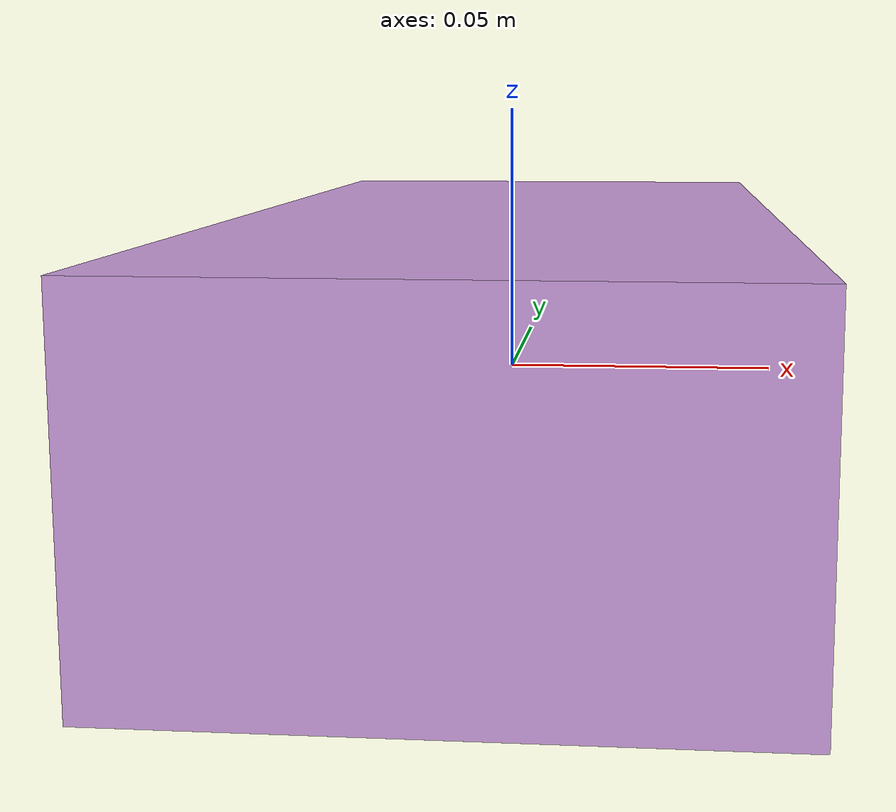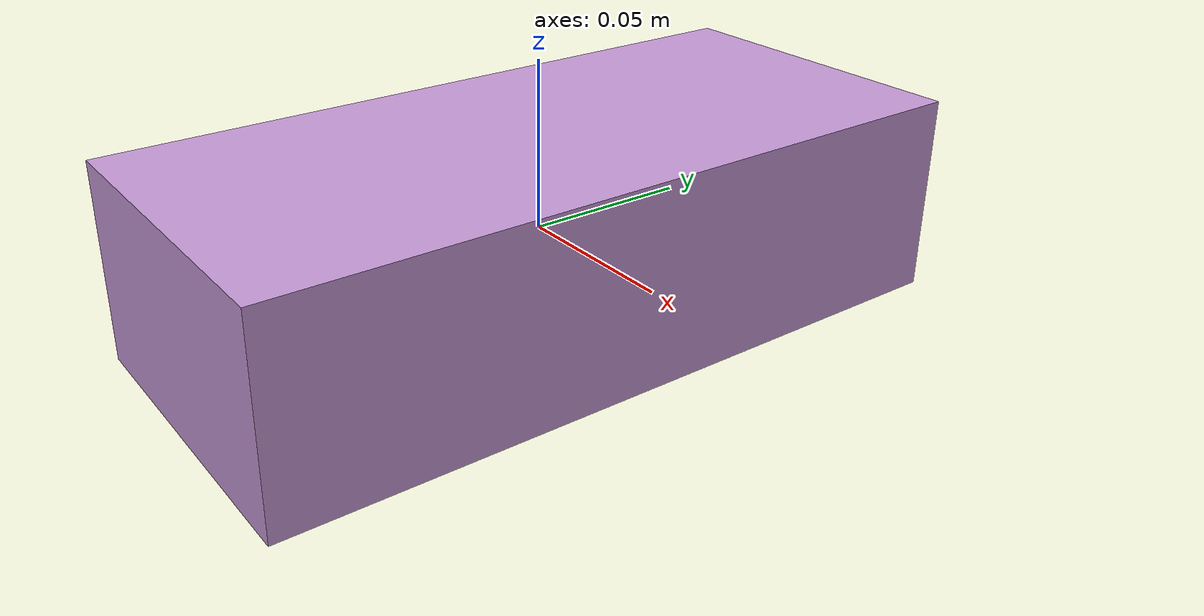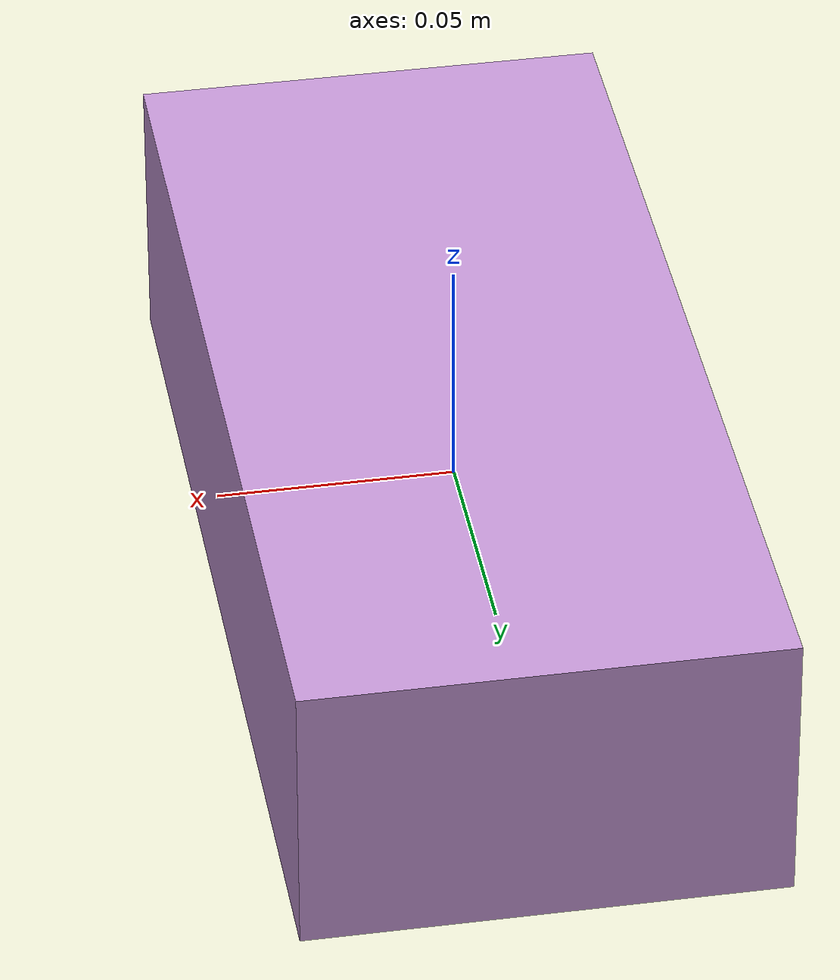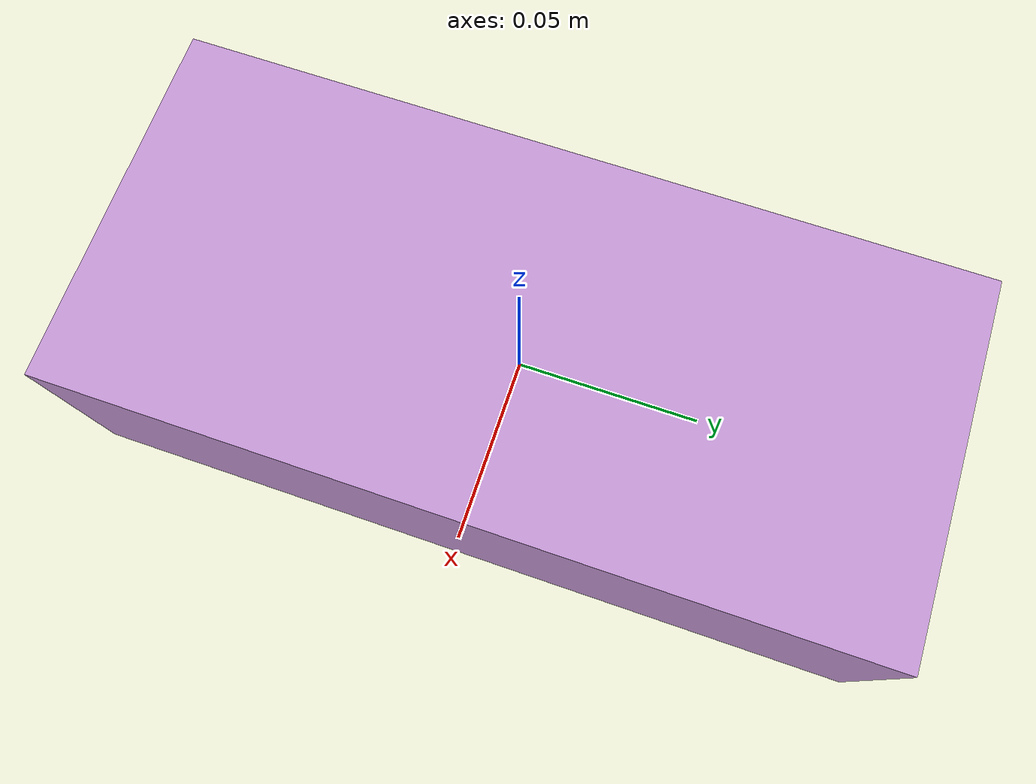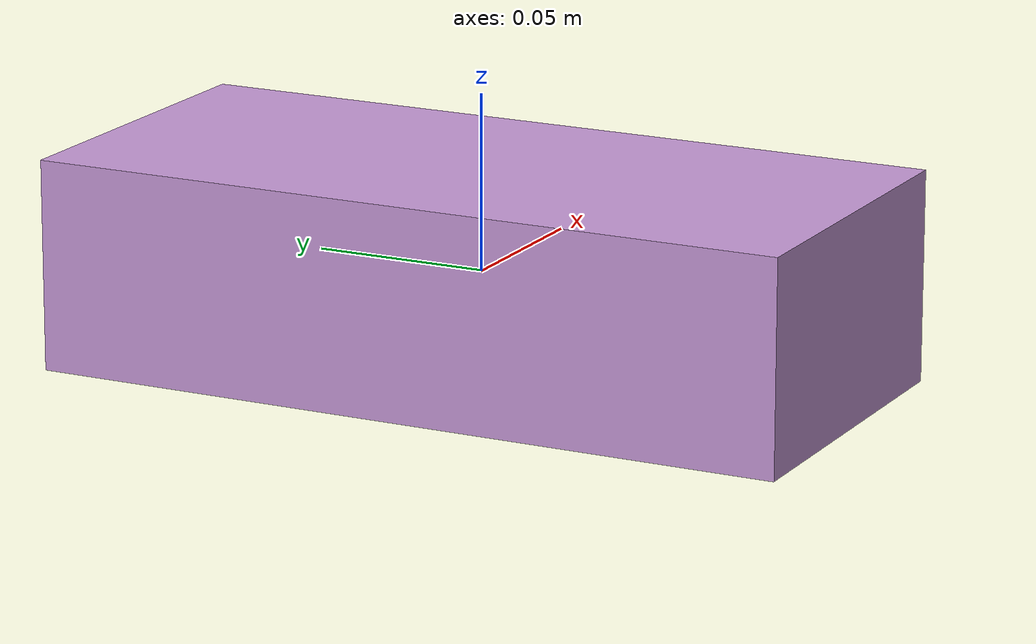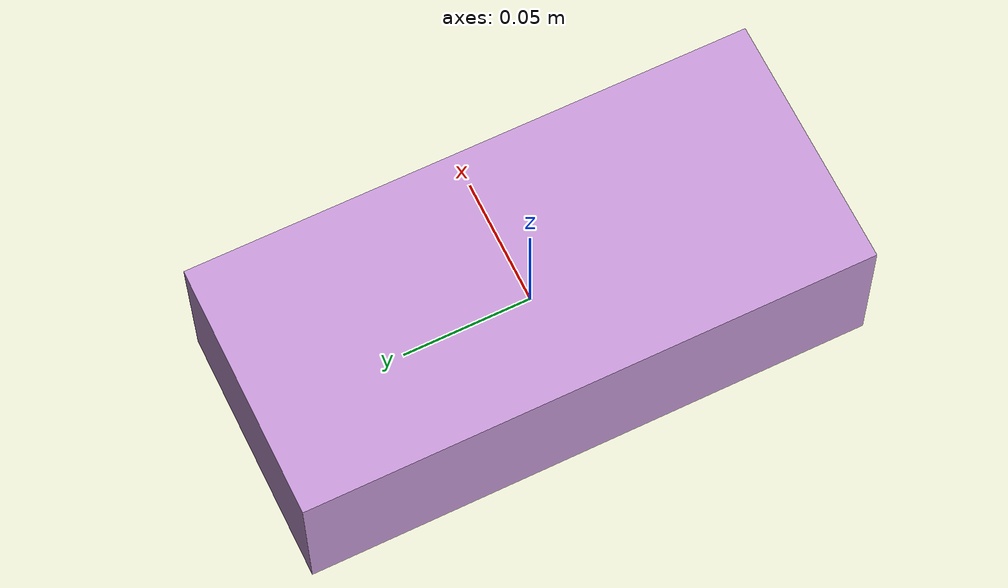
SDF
<?xml version="1.0"?>
<sdf version="1.7">
  <model name="block6">
    <pose> 0 0 0 0 0 0 </pose>
    <link name="block6_link">
      <inertial>
        <mass>1</mass>
        <inertia>
          <ixx>0.13011388457200915</ixx>
          <ixy>0.0</ixy>
          <ixz>0.0</ixz>
          <iyy>0.13658351124562848</iyy>
          <iyz>0.0</iyz>
          <izz>0.12591841244709426</izz>
        </inertia>
      </inertial>
      <collision name="collision">
        <geometry>
          <box>
            <size> 0.1 0.22 0.06 </size>
          </box>
        </geometry>
      </collision>
      <visual name="visual">
        <geometry>
          <box>
            <size> 0.1 0.22 0.06 </size>
          </box>
        </geometry>
        <material>
          <diffuse>0.7725490196078432 0.596078431372549 0.8392156862745098 1.0</diffuse>
        </material>
      </visual>
    </link>
  </model>
</sdf>
